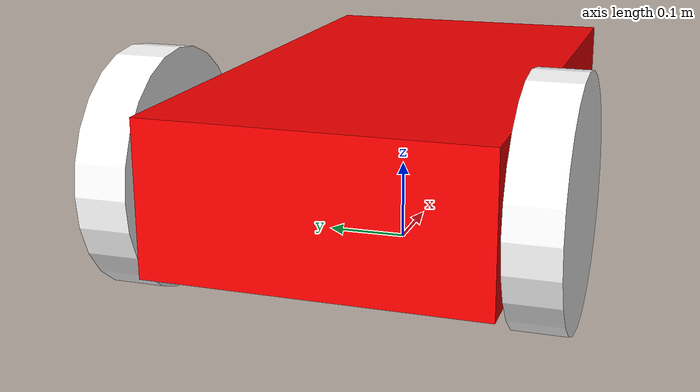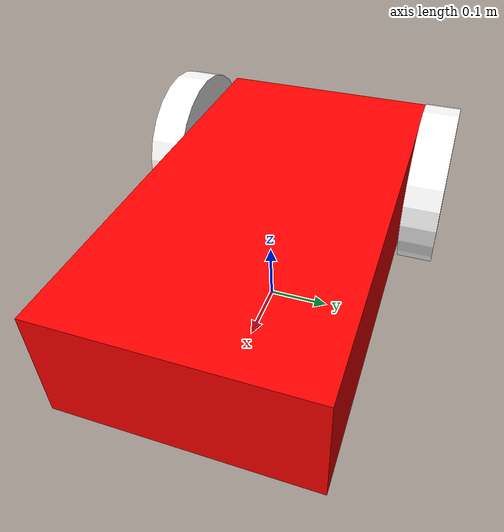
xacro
<?xml version="1.0" ?>
<robot name="basic_mobile_bot"
  xmlns:xacro="http://ros.org/wiki/xacro">
  <!-- #region properties-->
  <xacro:property name="base_width" value="0.39"/>
  <xacro:property name="base_length" value="0.70"/>
  <xacro:property name="base_height" value="0.18"/>

  <!-- Define the shape of the robot's two back wheels in meters -->
  <xacro:property name="wheel_radius" value="0.14"/>
  <xacro:property name="wheel_width" value="0.06"/>

  <!-- x-axis points forward, y-axis points to left, z-axis points upwards -->
  <!-- Define the gap between the wheel and chassis along y-axis in meters -->
  <xacro:property name="wheel_ygap" value="0.035"/>

  <!-- Position the wheels along the z-axis -->
  <xacro:property name="wheel_zoff" value="0.05"/>

  <!-- Position the wheels along the x-axis -->
  <xacro:property name="wheel_xoff" value="0.221"/>

  <!-- Position the caster wheel along the x-axis -->
  <xacro:property name="caster_xoff" value="0.217"/>
<!-- #endregion -->

  <xacro:include filename="$(find skbot_description)/urdf/macros.xacro" />
  <xacro:include filename="$(find skbot_description)/urdf/gazebo.xacro" />
  <xacro:include filename="$(find skbot_description)/urdf/materials.xacro" />
  <!-- ****************** ROBOT BASE FOOTPRINT ***************************  -->
  <!-- Define the center of the main robot chassis projected on the ground -->
  <link name="base_footprint"/>

  <!-- The base footprint of the robot is located underneath the chassis -->
  <joint name="base_joint" type="fixed">
    <parent link="base_footprint"/>
    <child link="base_link" />
    <origin xyz="0.0 0.0 ${(wheel_radius+wheel_zoff)}" rpy="0 0 0"/>
  </joint>

  <!-- ********************** ROBOT BASE *********************************  -->
  <link name="base_link">
    <visual>
      <origin xyz="0 0 -0.05" rpy="0 0 0"/>
      <geometry>
        <box size="${base_length} ${base_width} ${base_height}"/>
      </geometry>
      <material name="red"/>

    </visual>

    <collision>
      <geometry>
        <box size="${base_length} ${base_width} ${base_height}"/>
      </geometry>
    </collision>

    <xacro:box_inertia m="40.0" w="${base_width}" d="${base_length}" h="${base_height}"/>

  </link>

  <!-- *********************** DRIVE WHEELS ******************************  -->

  <xacro:macro name="wheel" params="prefix x_reflect y_reflect">
    <link name="${prefix}_link">
      <visual>
        <origin xyz="0 0 0" rpy="1.5707963267949 0 0"/>
        <geometry>
          <cylinder radius="${wheel_radius}" length="${wheel_width}"/>
        </geometry>
        <material name="white"/>
      </visual>

      <collision>
        <origin xyz="0 0 0" rpy="${pi/2} 0 0"/>
        <geometry>
          <cylinder radius="${wheel_radius}" length="${wheel_width}"/>
        </geometry>
      </collision>

      <xacro:cylinder_inertia m="110.5" r="${wheel_radius}" h="${wheel_width}"/>

    </link>

    <!-- Connect the wheels to the base_link at the appropriate location, and
         define a continuous joint to allow the wheels to freely rotate about
         an axis -->
    <joint name="${prefix}_joint" type="revolute">
      <parent link="base_link"/>
      <child link="${prefix}_link"/>
      <origin xyz="${x_reflect*wheel_xoff} ${y_reflect*(base_width/2+wheel_ygap)} ${-wheel_zoff}" rpy="0 0 0"/>
      <limit upper="3.1415" lower="-3.1415" effort="30" velocity="5.0"/>
      <axis xyz="0 1 0"/>
    </joint>
  </xacro:macro>

  <xacro:wheel prefix="drivewhl_l" x_reflect="-1" y_reflect="1" />
  <xacro:wheel prefix="drivewhl_r" x_reflect="-1" y_reflect="-1" />

  <!-- *********************** CASTER WHEEL ******************************  -->
  <!-- We add a caster wheel. It will be modeled as sphere.
       We define the wheel’s geometry, material and the joint to connect it to
       base_link at the appropriate location. -->
  <link name="front_caster">
    <visual>
      <geometry>
        <sphere radius="${(wheel_radius+wheel_zoff-(base_height/2))}"/>
      </geometry>
      <material name="white"/>

    </visual>
    <collision>
      <origin xyz="0 0 0" rpy="0 0 0"/>
      <geometry>
        <sphere radius="${(wheel_radius+wheel_zoff-(base_height/2))}"/>
      </geometry>
    </collision>
    <xacro:sphere_inertia m="10.05" r="${(wheel_radius+wheel_zoff-(base_height/2))}"/>
  </link>

  <joint name="caster_joint" type="fixed">
    <parent link="base_link"/>
    <child link="front_caster"/>
    <origin xyz="${caster_xoff} 0.0 ${-(base_height/2)}" rpy="0 0 0"/>
  </joint>

  <!-- *********************** IMU SETUP *********************************  -->
  <!-- Each sensor must be attached to a link.                              -->

  <joint name="imu_joint" type="fixed">
    <parent link="base_link"/>
    <child link="imu_link"/>
    <origin xyz="-0.10 0 0.05" rpy="0 0 0"/>
  </joint>

  <link name="imu_link"/>

  <!-- *********************** GPS SETUP **********************************  -->
  <joint name="gps_joint" type="fixed">
    <parent link="base_link"/>
    <child link="gps_link"/>
    <origin xyz="0.10 0 0.05" rpy="0 0 0"/>
  </joint>

  <link name="gps_link"/>

</robot>

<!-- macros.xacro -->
<robot name="" xmlns:xacro="http://www.ros.org/wiki/xacro">
  <xacro:macro name="box_inertia" params="m w h d">
    <inertial>
      <origin xyz="0 0 0" rpy="${pi/2} 0 ${pi/2}"/>
      <mass value="${m}"/>
      <inertia ixx="${(m/12) * (h*h + d*d)}" ixy="0.0" ixz="0.0" iyy="${(m/12) * (w*w + d*d)}" iyz="0.0" izz="${(m/12) * (w*w + h*h)}"/>
    </inertial>
  </xacro:macro>

  <xacro:macro name="cylinder_inertia" params="m r h">
    <inertial>
      <origin xyz="0 0 0" rpy="${pi/2} 0 0" />
      <mass value="${m}"/>
      <inertia ixx="${(m/12) * (3*r*r + h*h)}" ixy = "0" ixz = "0" iyy="${(m/12) * (3*r*r + h*h)}" iyz = "0" izz="${(m/2) * (r*r)}"/>
    </inertial>
  </xacro:macro>

  <xacro:macro name="sphere_inertia" params="m r">
    <inertial>
      <mass value="${m}"/>
      <inertia ixx="${(2/5) * m * (r*r)}" ixy="0.0" ixz="0.0" iyy="${(2/5) * m * (r*r)}" iyz="0.0" izz="${(2/5) * m * (r*r)}"/>
    </inertial>
  </xacro:macro>
</robot>

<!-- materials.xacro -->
<robot name=""
    xmlns:xacro="http://www.ros.org/wiki/xacro">
    <material name="black">
        <color rgba="0.0 0.0 0.0 1.0"/>
    </material>

    <material name="blue">
        <color rgba="0.0 0.0 0.8 1.0"/>
    </material>

    <material name="green">
        <color rgba="0.0 0.8 0.0 1.0"/>
    </material>

    <material name="grey">
        <color rgba="0.2 0.2 0.2 1.0"/>
    </material>

    <material name="orange">
        <color rgba="${255/255} ${108/255} ${10/255} 1.0"/>
    </material>
    <material name="white">
        <color rgba="${255/255} ${255/255} ${255/255} 1.0"/>
      </material>
      <material name="red">
        <color rgba="${255/255} ${0/255} ${0/255} 1.0"/>
      </material>
</robot>
